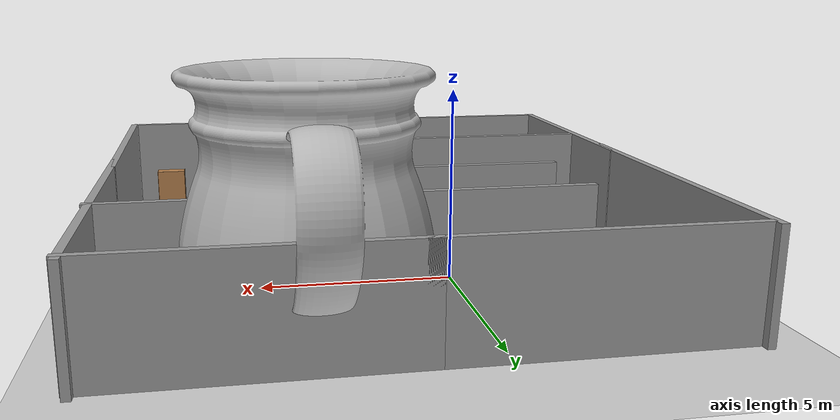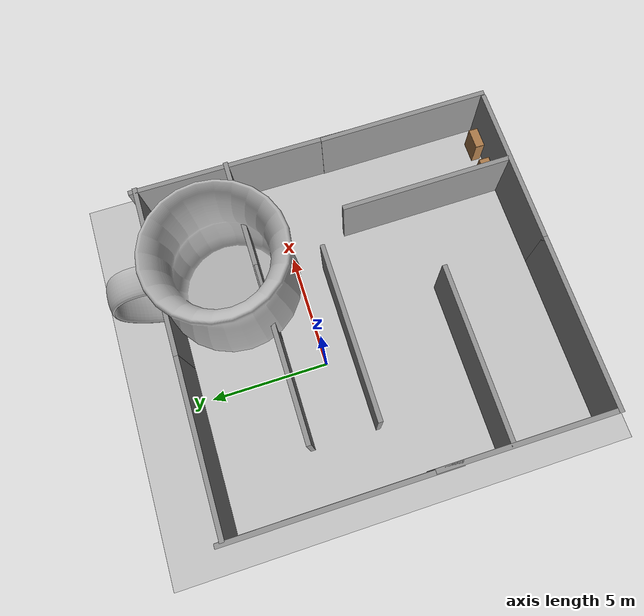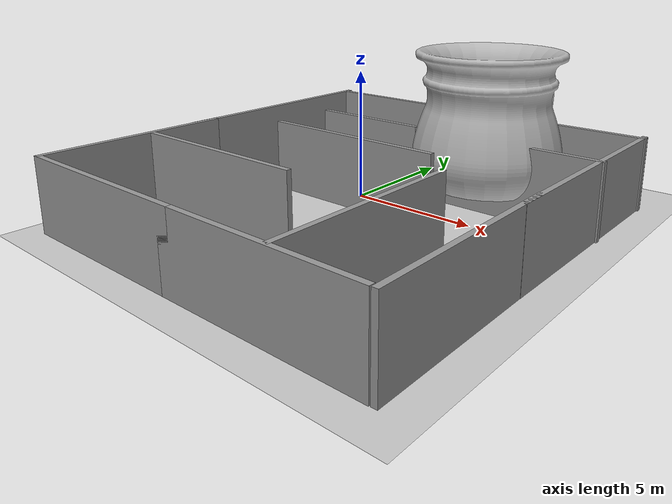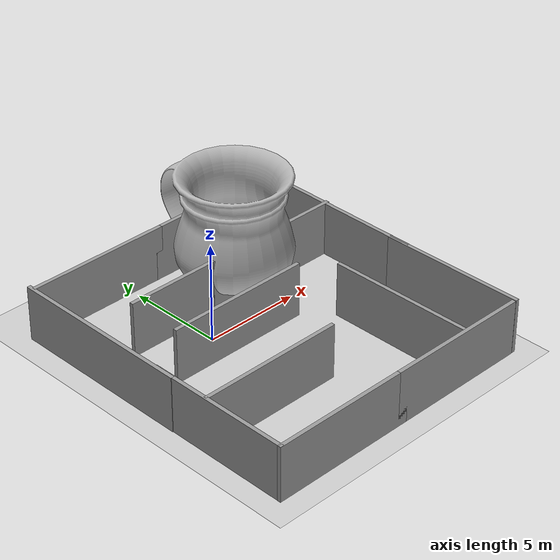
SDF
<sdf version="1.4">
 <world name="default">
  <include><uri>model://mug_gazebo</uri><pose>4 2.7 0.775 0 0 -1.5707963</pose></include>
  <include><uri>model://crackers_gazebo</uri><pose>3.8 3.15 0.775 1.5707963 0 -2.094129</pose></include>
  <include><uri>model://crackers1_gazebo</uri><pose>4.1 3.45 0.775 0 0 -1.7</pose></include>
  <model name="table1">
   <static>true</static>
   <link name="chassis">
    <pose>4.05 3 0.3875 0 0 0</pose>
    <collision name="collision"><geometry><box><size>0.913 0.913 0.775</size></box></geometry></collision>
    <visual name="visual"><geometry><box><size>0.913 0.913 0.775</size></box></geometry></visual>
   </link>
  </model>
  <light name="user_spot_light_0" type="spot">
   <pose>3.3 2.9 1.5 0 -0.599999 0</pose>
   <diffuse>0.5 0.5 0.5 1</diffuse>
   <specular>0.1 0.1 0.1 1</specular>
   <direction>0 0 -1</direction>
   <attenuation>
    <range>20</range>
    <constant>0.5</constant>
    <linear>0.01</linear>
    <quadratic>0.001</quadratic>
   </attenuation>
   <cast_shadows>0</cast_shadows>
   <spot><inner_angle>0.6</inner_angle><outer_angle>1</outer_angle><falloff>1</falloff></spot>
  </light>
  <light name="sun" type="directional">
   <pose>0 0 10 0 -0 0</pose>
   <diffuse>0.8 0.8 0.8 1</diffuse>
   <specular>0.2 0.2 0.2 1</specular>
   <attenuation>
    <range>1000</range>
    <constant>0.9</constant>
    <linear>0.01</linear>
    <quadratic>0.001</quadratic>
   </attenuation>
   <direction>-0.5 0.1 -0.9</direction>
  </light>
  <model name="ground_plane">
   <static>1</static>
   <link name="link">
    <collision name="collision">
     <geometry><plane><normal>0 0 1</normal><size>100 100</size></plane></geometry>
     <surface><friction><ode><mu>100</mu><mu2>50</mu2></ode></friction></surface>
    </collision>
    <visual name="visual">
     <cast_shadows>0</cast_shadows>
     <geometry><plane><normal>0 0 1</normal><size>100 100</size></plane></geometry>
     <material>
      <script><uri>file://media/materials/scripts/gazebo.material</uri><name>Gazebo/Grey</name></script>
     </material>
    </visual>
    <velocity_decay><linear>0</linear><angular>0</angular></velocity_decay>
   </link>
  </model>
  <physics type="ode">
   <max_step_size>0.001</max_step_size>
   <real_time_factor>1</real_time_factor>
   <real_time_update_rate>1000</real_time_update_rate>
   <gravity>0 0 -9.8</gravity>
  </physics>
  <scene><ambient>0.4 0.4 0.4 1</ambient><background>0.7 0.7 0.7 1</background><shadows>1</shadows></scene>
  <spherical_coordinates>
   <surface_model>EARTH_WGS84</surface_model>
   <latitude_deg>0</latitude_deg>
   <longitude_deg>0</longitude_deg>
   <elevation>0</elevation>
   <heading_deg>0</heading_deg>
  </spherical_coordinates>
  <model name="grey_wall_11">
   <static>1</static>
   <link name="link">
    <pose>0 0 1.4 0 -0 0</pose>
    <collision name="collision"><geometry><box><size>7.5 0.2 2.8</size></box></geometry></collision>
    <visual name="visual">
     <cast_shadows>0</cast_shadows>
     <geometry><box><size>7.5 0.2 2.8</size></box></geometry>
     <material>
      <script>
       <uri>model://grey_wall/materials/scripts</uri>
       <uri>model://grey_wall/materials/textures</uri>
       <name>vrc/grey_wall</name>
      </script>
     </material>
    </visual>
    <velocity_decay><linear>0</linear><angular>0</angular></velocity_decay>
   </link>
   <pose>-1.84504 5.5 0 0 -0 0</pose>
  </model>
  <model name="grey_wall">
   <static>1</static>
   <link name="link">
    <pose>0 0 1.4 0 -0 0</pose>
    <collision name="collision"><geometry><box><size>7.5 0.2 2.8</size></box></geometry></collision>
    <visual name="visual">
     <cast_shadows>0</cast_shadows>
     <geometry><box><size>7.5 0.2 2.8</size></box></geometry>
     <material>
      <script>
       <uri>model://grey_wall/materials/scripts</uri>
       <uri>model://grey_wall/materials/textures</uri>
       <name>vrc/grey_wall</name>
      </script>
     </material>
    </visual>
    <velocity_decay><linear>0</linear><angular>0</angular></velocity_decay>
   </link>
   <pose>0.446751 1.58611 0 0 -0 0</pose>
  </model>
  <model name="grey_wall_10">
   <static>1</static>
   <link name="link">
    <pose>0 0 1.4 0 -0 0</pose>
    <collision name="collision"><geometry><box><size>7.5 0.2 2.8</size></box></geometry></collision>
    <visual name="visual">
     <cast_shadows>0</cast_shadows>
     <geometry><box><size>7.5 0.2 2.8</size></box></geometry>
     <material>
      <script>
       <uri>model://grey_wall/materials/scripts</uri>
       <uri>model://grey_wall/materials/textures</uri>
       <name>vrc/grey_wall</name>
      </script>
     </material>
    </visual>
    <velocity_decay><linear>0</linear><angular>0</angular></velocity_decay>
   </link>
   <pose>5.27661 5.5 0 0 -0 0</pose>
  </model>
  <model name="grey_wall_0">
   <static>1</static>
   <link name="link">
    <pose>0 0 1.4 0 -0 0</pose>
    <collision name="collision"><geometry><box><size>7.5 0.2 2.8</size></box></geometry></collision>
    <visual name="visual">
     <cast_shadows>0</cast_shadows>
     <geometry><box><size>7.5 0.2 2.8</size></box></geometry>
     <material>
      <script>
       <uri>model://grey_wall/materials/scripts</uri>
       <uri>model://grey_wall/materials/textures</uri>
       <name>vrc/grey_wall</name>
      </script>
     </material>
    </visual>
    <velocity_decay><linear>0</linear><angular>0</angular></velocity_decay>
   </link>
   <pose>5.27661 1.58174 0 0 -0 0</pose>
  </model>
  <model name="grey_wall_1">
   <static>1</static>
   <link name="link">
    <pose>0 0 1.4 0 -0 0</pose>
    <collision name="collision"><geometry><box><size>7.5 0.2 2.8</size></box></geometry></collision>
    <visual name="visual">
     <cast_shadows>0</cast_shadows>
     <geometry><box><size>7.5 0.2 2.8</size></box></geometry>
     <material>
      <script>
       <uri>model://grey_wall/materials/scripts</uri>
       <uri>model://grey_wall/materials/textures</uri>
       <name>vrc/grey_wall</name>
      </script>
     </material>
    </visual>
    <velocity_decay><linear>0</linear><angular>0</angular></velocity_decay>
   </link>
   <pose>-2 -10 0 0 -0 0</pose>
  </model>
  <model name="grey_wall_2">
   <static>1</static>
   <link name="link">
    <pose>0 0 1.4 0 -0 0</pose>
    <collision name="collision"><geometry><box><size>7.5 0.2 2.8</size></box></geometry></collision>
    <visual name="visual">
     <cast_shadows>0</cast_shadows>
     <geometry><box><size>7.5 0.2 2.8</size></box></geometry>
     <material>
      <script>
       <uri>model://grey_wall/materials/scripts</uri>
       <uri>model://grey_wall/materials/textures</uri>
       <name>vrc/grey_wall</name>
      </script>
     </material>
    </visual>
    <velocity_decay><linear>0</linear><angular>0</angular></velocity_decay>
   </link>
   <pose>5 -10 0 0 -0 0</pose>
  </model>
  <model name="grey_wall_3">
   <static>1</static>
   <link name="link">
    <pose>0 0 1.4 0 -0 0</pose>
    <collision name="collision"><geometry><box><size>9.5 0.2 2.8</size></box></geometry></collision>
    <visual name="visual">
     <cast_shadows>0</cast_shadows>
     <geometry><box><size>9.5 0.2 2.8</size></box></geometry>
     <material>
      <script>
       <uri>model://grey_wall/materials/scripts</uri>
       <uri>model://grey_wall/materials/textures</uri>
       <name>vrc/grey_wall</name>
      </script>
     </material>
    </visual>
    <velocity_decay><linear>0</linear><angular>0</angular></velocity_decay>
   </link>
   <pose>-5.64143 1.05172 0 0 -0 1.5682</pose>
  </model>
  <model name="grey_wall_4">
   <static>1</static>
   <link name="link">
    <pose>0 0 1.4 0 -0 0</pose>
    <collision name="collision"><geometry><box><size>7.5 0.2 2.8</size></box></geometry></collision>
    <visual name="visual">
     <cast_shadows>0</cast_shadows>
     <geometry><box><size>7.5 0.2 2.8</size></box></geometry>
     <material>
      <script>
       <uri>model://grey_wall/materials/scripts</uri>
       <uri>model://grey_wall/materials/textures</uri>
       <name>vrc/grey_wall</name>
      </script>
     </material>
    </visual>
    <velocity_decay><linear>0</linear><angular>0</angular></velocity_decay>
   </link>
   <pose>-5.63517 -6.33198 0 0 -0 1.56755</pose>
  </model>
  <model name="grey_wall_5">
   <static>1</static>
   <link name="link">
    <pose>0 0 1.4 0 -0 0</pose>
    <collision name="collision"><geometry><box><size>9.5 0.2 2.8</size></box></geometry></collision>
    <visual name="visual">
     <cast_shadows>0</cast_shadows>
     <geometry><box><size>9.5 0.2 2.8</size></box></geometry>
     <material>
      <script>
       <uri>model://grey_wall/materials/scripts</uri>
       <uri>model://grey_wall/materials/textures</uri>
       <name>vrc/grey_wall</name>
      </script>
     </material>
    </visual>
    <velocity_decay><linear>0</linear><angular>0</angular></velocity_decay>
   </link>
   <pose>8.85575 1.04356 0 0 -0 1.56663</pose>
  </model>
  <model name="grey_wall_6">
   <static>1</static>
   <link name="link">
    <pose>0 0 1.4 0 -0 0</pose>
    <collision name="collision"><geometry><box><size>7.5 0.2 2.8</size></box></geometry></collision>
    <visual name="visual">
     <cast_shadows>0</cast_shadows>
     <geometry><box><size>7.5 0.2 2.8</size></box></geometry>
     <material>
      <script>
       <uri>model://grey_wall/materials/scripts</uri>
       <uri>model://grey_wall/materials/textures</uri>
       <name>vrc/grey_wall</name>
      </script>
     </material>
    </visual>
    <velocity_decay><linear>0</linear><angular>0</angular></velocity_decay>
   </link>
   <pose>8.8519 -6.33227 0 0 -0 1.57886</pose>
  </model>
  <model name="grey_wall_7">
   <static>1</static>
   <link name="link">
    <pose>0 0 1.4 0 -0 0</pose>
    <collision name="collision"><geometry><box><size>7.5 0.2 2.8</size></box></geometry></collision>
    <visual name="visual">
     <cast_shadows>0</cast_shadows>
     <geometry><box><size>7.5 0.2 2.8</size></box></geometry>
     <material>
      <script>
       <uri>model://grey_wall/materials/scripts</uri>
       <uri>model://grey_wall/materials/textures</uri>
       <name>vrc/grey_wall</name>
      </script>
     </material>
    </visual>
    <velocity_decay><linear>0</linear><angular>0</angular></velocity_decay>
   </link>
   <pose>0.446751 -1.23078 0 0 -0 0</pose>
  </model>
  <model name="grey_wall_8">
   <static>1</static>
   <link name="link">
    <pose>0 0 1.4 0 -0 0</pose>
    <collision name="collision"><geometry><box><size>7.5 0.2 2.8</size></box></geometry></collision>
    <visual name="visual">
     <cast_shadows>0</cast_shadows>
     <geometry><box><size>7.5 0.2 2.8</size></box></geometry>
     <material>
      <script>
       <uri>model://grey_wall/materials/scripts</uri>
       <uri>model://grey_wall/materials/textures</uri>
       <name>vrc/grey_wall</name>
      </script>
     </material>
    </visual>
    <velocity_decay><linear>0</linear><angular>0</angular></velocity_decay>
   </link>
   <pose>5.52799 -6.26808 0 0 -0 1.57826</pose>
  </model>
  <model name="grey_wall_9">
   <static>1</static>
   <link name="link">
    <pose>0 0 1.4 0 -0 0</pose>
    <collision name="collision"><geometry><box><size>7.5 0.2 2.8</size></box></geometry></collision>
    <visual name="visual">
     <cast_shadows>0</cast_shadows>
     <geometry><box><size>7.5 0.2 2.8</size></box></geometry>
     <material>
      <script>
       <uri>model://grey_wall/materials/scripts</uri>
       <uri>model://grey_wall/materials/textures</uri>
       <name>vrc/grey_wall</name>
      </script>
     </material>
    </visual>
    <velocity_decay><linear>0</linear><angular>0</angular></velocity_decay>
   </link>
   <pose>-1.9045 -5.66841 0 0 -0 0.001741</pose>
  </model>
  <model name="bookshelf">
   <static>1</static>
   <link name="link">
    <inertial><mass>1</mass></inertial>
    <collision name="back">
     <pose>0 0.005 0.6 0 -0 0</pose>
     <geometry><box><size>0.9 0.01 1.2</size></box></geometry>
    </collision>
    <visual name="visual1">
     <pose>0 0.005 0.6 0 -0 0</pose>
     <geometry><box><size>0.9 0.01 1.2</size></box></geometry>
     <material>
      <script><uri>file://media/materials/scripts/gazebo.material</uri><name>Gazebo/Wood</name></script>
     </material>
    </visual>
    <collision name="left_side">
     <pose>0.45 -0.195 0.6 0 -0 0</pose>
     <geometry><box><size>0.02 0.4 1.2</size></box></geometry>
    </collision>
    <visual name="visual2">
     <pose>0.45 -0.195 0.6 0 -0 0</pose>
     <geometry><box><size>0.02 0.4 1.2</size></box></geometry>
     <material>
      <script><uri>file://media/materials/scripts/gazebo.material</uri><name>Gazebo/Wood</name></script>
     </material>
    </visual>
    <collision name="right_side">
     <pose>-0.45 -0.195 0.6 0 -0 0</pose>
     <geometry><box><size>0.02 0.4 1.2</size></box></geometry>
    </collision>
    <visual name="visual3">
     <pose>-0.45 -0.195 0.6 0 -0 0</pose>
     <geometry><box><size>0.02 0.4 1.2</size></box></geometry>
     <material>
      <script><uri>file://media/materials/scripts/gazebo.material</uri><name>Gazebo/Wood</name></script>
     </material>
    </visual>
    <collision name="bottom">
     <pose>0 -0.195 0.03 0 -0 0</pose>
     <geometry><box><size>0.88 0.4 0.06</size></box></geometry>
    </collision>
    <visual name="visual4">
     <pose>0 -0.195 0.03 0 -0 0</pose>
     <geometry><box><size>0.88 0.4 0.06</size></box></geometry>
     <material>
      <script><uri>file://media/materials/scripts/gazebo.material</uri><name>Gazebo/Wood</name></script>
     </material>
    </visual>
    <collision name="top">
     <pose>0 -0.195 1.19 0 -0 0</pose>
     <geometry><box><size>0.88 0.4 0.02</size></box></geometry>
    </collision>
    <visual name="visual5">
     <pose>0 -0.195 1.19 0 -0 0</pose>
     <geometry><box><size>0.88 0.4 0.02</size></box></geometry>
     <material>
      <script><uri>file://media/materials/scripts/gazebo.material</uri><name>Gazebo/Wood</name></script>
     </material>
    </visual>
    <collision name="low_shelf">
     <pose>0 -0.195 0.43 0 -0 0</pose>
     <geometry><box><size>0.88 0.4 0.02</size></box></geometry>
    </collision>
    <visual name="visual6">
     <pose>0 -0.195 0.43 0 -0 0</pose>
     <geometry><box><size>0.88 0.4 0.02</size></box></geometry>
     <material>
      <script><uri>file://media/materials/scripts/gazebo.material</uri><name>Gazebo/Wood</name></script>
     </material>
    </visual>
    <collision name="high_shelf">
     <pose>0 -0.195 0.8 0 -0 0</pose>
     <geometry><box><size>0.88 0.4 0.02</size></box></geometry>
    </collision>
    <visual name="visual7">
     <pose>0 -0.195 0.8 0 -0 0</pose>
     <geometry><box><size>0.88 0.4 0.02</size></box></geometry>
     <material>
      <script><uri>file://media/materials/scripts/gazebo.material</uri><name>Gazebo/Wood</name></script>
     </material>
    </visual>
    <velocity_decay><linear>0</linear><angular>0</angular></velocity_decay>
   </link>
   <pose>7.68272 -9.40376 0 0 -0 0</pose>
  </model>
  <model name="cabinet">
   <static>1</static>
   <link name="cabinet_bottom_plate">
    <inertial>
     <pose>0 0 -1 0 -0 0</pose>
     <inertia><ixx>2.05</ixx><ixy>0</ixy><ixz>0</ixz><iyy>2.05</iyy><iyz>0</iyz><izz>2.05</izz></inertia>
     <mass>25</mass>
    </inertial>
    <collision name="cabinet_bottom_plate_geom">
     <pose>0 0 0.01 0 -0 0</pose>
     <geometry><box><size>0.45 0.45 0.02</size></box></geometry>
    </collision>
    <visual name="cabinet_bottom_plate_geom_visual">
     <pose>0 0 0.01 0 -0 0</pose>
     <geometry><box><size>0.45 0.45 0.02</size></box></geometry>
     <material>
      <script><uri>file://media/materials/scripts/gazebo.material</uri><name>Gazebo/Wood</name></script>
     </material>
    </visual>
    <collision name="cabinet_bottom_plate_geom_cabinet_back_plate">
     <pose>0.235 0 0.51 0 -0 0</pose>
     <geometry><box><size>0.02 0.45 1.02</size></box></geometry>
    </collision>
    <visual name="cabinet_bottom_plate_geom_cabinet_back_plate_visual">
     <pose>0.235 0 0.51 0 -0 0</pose>
     <geometry><box><size>0.02 0.45 1.02</size></box></geometry>
     <material>
      <script><uri>file://media/materials/scripts/gazebo.material</uri><name>Gazebo/Wood</name></script>
     </material>
    </visual>
    <collision name="cabinet_bottom_plate_geom_cabinet_left_plate">
     <pose>0 0.235 0.51 0 -0 0</pose>
     <geometry><box><size>0.45 0.02 1.02</size></box></geometry>
    </collision>
    <visual name="cabinet_bottom_plate_geom_cabinet_left_plate_visual">
     <pose>0 0.235 0.51 0 -0 0</pose>
     <geometry><box><size>0.45 0.02 1.02</size></box></geometry>
     <material>
      <script><uri>file://media/materials/scripts/gazebo.material</uri><name>Gazebo/Wood</name></script>
     </material>
    </visual>
    <collision name="cabinet_bottom_plate_geom_cabinet_middle_plate">
     <pose>0 0 0.51 0 -0 0</pose>
     <geometry><box><size>0.45 0.45 0.02</size></box></geometry>
    </collision>
    <visual name="cabinet_bottom_plate_geom_cabinet_middle_plate_visual">
     <pose>0 0 0.51 0 -0 0</pose>
     <geometry><box><size>0.45 0.45 0.02</size></box></geometry>
     <material>
      <script><uri>file://media/materials/scripts/gazebo.material</uri><name>Gazebo/Wood</name></script>
     </material>
    </visual>
    <collision name="cabinet_bottom_plate_geom_cabinet_right_plate">
     <pose>0 -0.235 0.51 0 -0 0</pose>
     <geometry><box><size>0.45 0.02 1.02</size></box></geometry>
    </collision>
    <visual name="cabinet_bottom_plate_geom_cabinet_right_plate_visual">
     <pose>0 -0.235 0.51 0 -0 0</pose>
     <geometry><box><size>0.45 0.02 1.02</size></box></geometry>
     <material>
      <script><uri>file://media/materials/scripts/gazebo.material</uri><name>Gazebo/Wood</name></script>
     </material>
    </visual>
    <collision name="cabinet_bottom_plate_geom_cabinet_top_plate">
     <pose>0 0 1.01 0 -0 0</pose>
     <geometry><box><size>0.45 0.45 0.02</size></box></geometry>
    </collision>
    <visual name="cabinet_bottom_plate_geom_cabinet_top_plate_visual">
     <pose>0 0 1.01 0 -0 0</pose>
     <geometry><box><size>0.45 0.45 0.02</size></box></geometry>
     <material>
      <script><uri>file://media/materials/scripts/gazebo.material</uri><name>Gazebo/Wood</name></script>
     </material>
    </visual>
    <velocity_decay><linear>0</linear><angular>0</angular></velocity_decay>
   </link>
   <pose>6.44235 -9.59798 0 0 -0 0</pose>
  </model>
 </world>
</sdf>

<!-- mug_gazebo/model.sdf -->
<sdf version='1.4'>
  <model name="mug">
      <static>0</static>
      <link name='link'>
        <inertial>
          <mass>0.0189132</mass>
          <inertia>
            <ixx>3.36060179959e-06</ixx>
            <ixy>0.000000</ixy>
            <ixz>0.000000</ixz>
            <iyy>3.36060179959e-06</iyy>
            <iyz>0.000000</iyz>
            <izz>1.34975977923e-06</izz>
          </inertia>
        </inertial>
        <collision name='collision'>
          <geometry>
            <mesh>
              <uri>model://mug_gazebo/meshes/mug.stl</uri>
              <scale>0.0254 0.0254 0.0254</scale>
            </mesh>
          </geometry>
          <surface>
            <friction>
              <ode>
                <mu>30.0</mu>
                <mu2>30.0</mu2>
              </ode>
            </friction>
          </surface>
        </collision>
        <visual name='visual'>
          <geometry>
            <mesh>
              <uri>model://mug_gazebo/meshes/mug.dae</uri>
              <scale>1 1 1</scale>
            </mesh>
          </geometry>
        </visual>
        <velocity_decay>
          <linear>0.000000</linear>
          <angular>0.000000</angular>
        </velocity_decay>
        <self_collide>0</self_collide>
        <kinematic>0</kinematic>
        <gravity>1</gravity>
      </link>
  </model>
</sdf>

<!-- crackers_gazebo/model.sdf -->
<sdf version='1.4'>
  <model name="crackers">
      <static>0</static>
      <link name='link'>
        <inertial>
          <mass>0.0189132</mass>
          <inertia>
            <ixx>3.36060179959e-06</ixx>
            <ixy>0.000000</ixy>
            <ixz>0.000000</ixz>
            <iyy>3.36060179959e-06</iyy>
            <iyz>0.000000</iyz>
            <izz>1.34975977923e-06</izz>
          </inertia>
        </inertial>
        <collision name='collision'>
          <geometry>
            <mesh>
              <uri>model://crackers_gazebo/meshes/crackers.dae</uri>
              <scale>0.0254 0.0254 0.0254</scale>
            </mesh>
          </geometry>
          <surface>
            <friction>
              <ode>
                <mu>30.0</mu>
                <mu2>30.0</mu2>
              </ode>
            </friction>
          </surface>
        </collision>
        <visual name='visual'>
          <geometry>
            <mesh>
              <uri>model://crackers_gazebo/meshes/crackers.dae</uri>
              <scale>0.0254 0.0254 0.0254</scale>
            </mesh>
          </geometry>
        </visual>
        <velocity_decay>
          <linear>0.000000</linear>
          <angular>0.000000</angular>
        </velocity_decay>
        <self_collide>0</self_collide>
        <kinematic>0</kinematic>
        <gravity>1</gravity>
      </link>
  </model>
</sdf>

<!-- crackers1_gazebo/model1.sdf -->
<sdf version='1.4'>
  <model name="crackers1">
      <static>0</static>
      <link name='link'>
        <inertial>
          <mass>0.0189132</mass>
          <inertia>
            <ixx>3.36060179959e-06</ixx>
            <ixy>0.000000</ixy>
            <ixz>0.000000</ixz>
            <iyy>3.36060179959e-06</iyy>
            <iyz>0.000000</iyz>
            <izz>1.34975977923e-06</izz>
          </inertia>
        </inertial>
        <collision name='collision'>
          <geometry>
            <mesh>
              <uri>model://crackers1_gazebo/meshes/crackers1.stl</uri>
              <scale>0.0254 0.0254 0.0254</scale>
            </mesh>
          </geometry>
          <surface>
            <friction>
              <ode>
                <mu>30.0</mu>
                <mu2>30.0</mu2>
              </ode>
            </friction>
          </surface>
        </collision>
        <visual name='visual'>
          <geometry>
            <mesh>
              <uri>model://crackers1_gazebo/meshes/crackers1.dae</uri>
              <scale>1 1 1</scale>
            </mesh>
          </geometry>
        </visual>
        <velocity_decay>
          <linear>0.000000</linear>
          <angular>0.000000</angular>
        </velocity_decay>
        <self_collide>0</self_collide>
        <kinematic>0</kinematic>
        <gravity>1</gravity>
      </link>
  </model>
</sdf>
